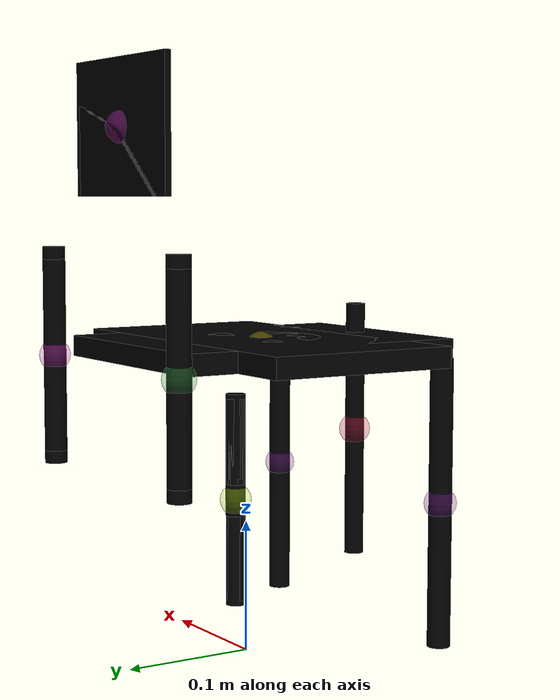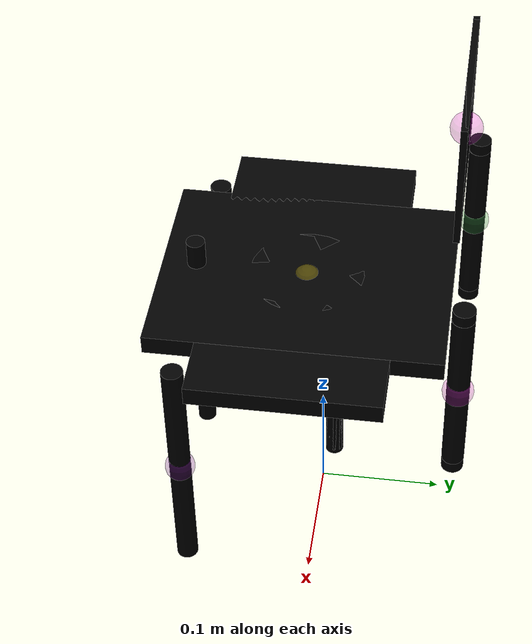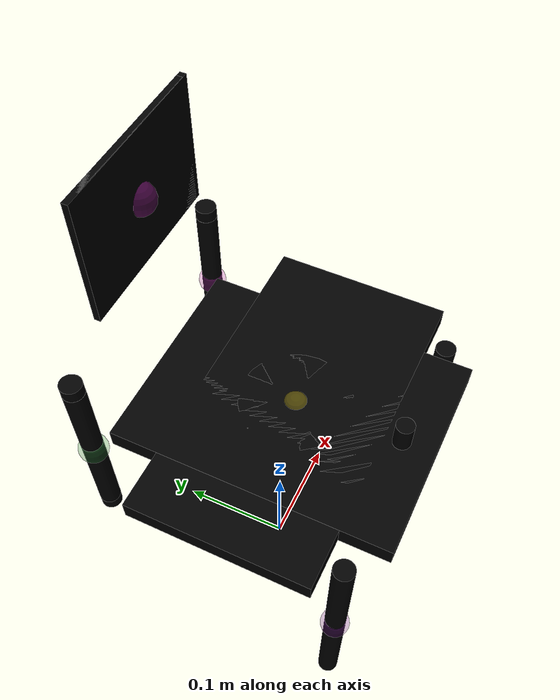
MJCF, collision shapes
<mujoco model="chair_balser_0115">
  <custom>
    <numeric data="-0.275772 0.129422 0.007124 1.0 0.0 0.0 0.0" name="0_part0_initpos" />
    <numeric data="0.376149 0.027328 0.00842 0.70441 -0.704527 0.061253 -0.060795" name="7_part7_initpos" />
    <numeric data="0.036779 -0.031849 0.007996 1.0 0.000356 0.000462 7.2e-05" name="6_part6_initpos" />
    <numeric data="-0.28514 0.250594 0.008346 0.707055 -0.008498 -0.707056 -0.008499" name="5_part5_initpos" />
    <numeric data="-0.282712 0.034813 0.008573 0.703702 -0.069309 -0.703702 0.069309" name="4_part4_initpos" />
    <numeric data="0.25925 0.024199 0.00842 0.011869 -0.011435 -0.707092 0.706929" name="3_part3_initpos" />
    <numeric data="0.046371 0.200692 0.005433 0.706734 -0.707072 0.00701 0.022966" name="2_part2_initpos" />
    <numeric data="-0.297152 -0.182409 0.007363 0.707019 0.000232 0.00023 0.707195" name="1_part1_initpos" />
  </custom>
  <asset>
    <mesh file="chair_balser_0115/0.stl" name="part0" scale="0.0006 0.0006 0.0006" />
    <mesh file="chair_balser_0115/7.stl" name="part7" scale="0.0006 0.0006 0.0006" />
    <mesh file="chair_balser_0115/6.stl" name="part6" scale="0.0006 0.0006 0.0006" />
    <mesh file="chair_balser_0115/5.stl" name="part5" scale="0.0006 0.0006 0.0006" />
    <mesh file="chair_balser_0115/4.stl" name="part4" scale="0.0006 0.0006 0.0006" />
    <mesh file="chair_balser_0115/3.stl" name="part3" scale="0.0006 0.0006 0.0006" />
    <mesh file="chair_balser_0115/2.stl" name="part2" scale="0.0006 0.0006 0.0006" />
    <mesh file="chair_balser_0115/1.stl" name="part1" scale="0.0006 0.0006 0.0006" />
  </asset>
  <worldbody>
  <inertial mass="5.0" diaginertia="0.05 0.05 0.05" pos="0 0 0" />
  <body name="combined_body" pos="0 -0.1 0.16336000366210936" quat="1 0 0 0"><geom conaffinity="0" contype="0" density="0" mesh="part0" name="0_part0_mesh" pos="0.0 0.0 0.0" rgba="0.82 0.71 0.55 1" type="mesh" quat="1 0 0 0" />
      <geom density="50" name="noviz_collision_0_part0_0" pos="0.0 0.0 0.0" quat="1 0 0 0" rgba="0 0 0 0" size="0.00735 0.0987" solref="0.001 3" type="cylinder" />
    <site name="0_part0_horizontal_radius_site" pos="0.0 0.0 0.0" quat="1 0 0 0" rgba="0 0 0 0" size="0.012" />
      <site name="0_part0_top_site" pos="0.0 0.0 0.0" quat="1 0 0 0" rgba="0 0 0 0" size="0.012" />
      <site name="0_part0_bottom_site" pos="0.0 0.0 0.0" quat="1 0 0 0" rgba="0 0 0 0" size="0.012" />
      <site name="0_part0_corner_site8" pos="0.0 0.0 0.0" quat="1 0 0 0" rgba="0 0 0 0" size="0.012" />
      <site name="0_part0_corner_site7" pos="0.0 0.0 0.0" quat="1 0 0 0" rgba="0 0 0 0" size="0.012" />
      <site name="0_part0_corner_site6" pos="0.0 0.0 0.0" quat="1 0 0 0" rgba="0 0 0 0" size="0.012" />
      <site name="0_part0_corner_site5" pos="0.0 0.0 0.0" quat="1 0 0 0" rgba="0 0 0 0" size="0.012" />
      <site name="0_part0_corner_site4" pos="0.0 0.0 0.0" quat="1 0 0 0" rgba="0 0 0 0" size="0.012" />
      <site name="0_part0_corner_site3" pos="0.0 0.0 0.0" quat="1 0 0 0" rgba="0 0 0 0" size="0.012" />
      <site name="0_part0_corner_site2" pos="0.0 0.0 0.0" quat="1 0 0 0" rgba="0 0 0 0" size="0.012" />
      <site name="0_part0_corner_site1" pos="0.0 0.0 0.0" quat="1 0 0 0" rgba="0 0 0 0" size="0.012" />
      <site name="frontsupp-frontlegs,conn_site2" pos="0.0 0.0 0.0" quat="1 0 0 0" rgba="0.9019 0.0980 0.2941 0.3" size="0.012" />
      <site name="frontsupp-frontlegs,conn_site1" pos="0.0 0.0 0.0" quat="1 0 0 0" rgba="0.9019 0.0980 0.2941 0.3" size="0.012" />
      <geom conaffinity="0" contype="0" density="0" mesh="part7" name="7_part7_mesh" pos="-0.09673416617999998 0.21222663083999996 0.06095999999999999" rgba="0.82 0.71 0.55 1" type="mesh" quat="1 0 0 0" />
      <geom density="50" name="noviz_collision_7_part7_1" pos="-0.09673416617999998 0.21222663083999996 0.06095999999999999" quat="1 0 0 0" rgba="0 0 0 0" size="0.008475 0.06" solref="0.001 3" type="cylinder" />
      <geom density="50" name="noviz_collision_7_part7_2" pos="-0.09673416617999998 0.21222663083999996 0.06095999999999999" quat="1 0 0 0" rgba="0 0 0 0" size="0.008475 0.0828" solref="0.001 3" type="cylinder" />
      <geom density="50" name="noviz_collision_7_part7_3" pos="-0.09673416617999998 0.21222663083999996 0.06095999999999999" quat="1 0 0 0" rgba="0 0 0 0" size="0.008549999999999999 0.07319999999999999" solref="0.001 3" type="cylinder" />
    <site name="7_part7_horizontal_radius_site" pos="-0.09673416617999998 0.21222663083999996 0.06095999999999999" quat="1 0 0 0" rgba="0 0 0 0" size="0.012" />
      <site name="7_part7_top_site" pos="-0.09673416617999998 0.21222663083999996 0.06095999999999999" quat="1 0 0 0" rgba="0 0 0 0" size="0.012" />
      <site name="7_part7_bottom_site" pos="-0.09673416617999998 0.21222663083999996 0.06095999999999999" quat="1 0 0 0" rgba="0 0 0 0" size="0.012" />
      <site name="7_part7_corner_site8" pos="-0.09673416617999998 0.21222663083999996 0.06095999999999999" quat="1 0 0 0" rgba="0 0 0 0" size="0.012" />
      <site name="7_part7_corner_site7" pos="-0.09673416617999998 0.21222663083999996 0.06095999999999999" quat="1 0 0 0" rgba="0 0 0 0" size="0.012" />
      <site name="7_part7_corner_site6" pos="-0.09673416617999998 0.21222663083999996 0.06095999999999999" quat="1 0 0 0" rgba="0 0 0 0" size="0.012" />
      <site name="7_part7_corner_site5" pos="-0.09673416617999998 0.21222663083999996 0.06095999999999999" quat="1 0 0 0" rgba="0 0 0 0" size="0.012" />
      <site name="7_part7_corner_site4" pos="-0.09673416617999998 0.21222663083999996 0.06095999999999999" quat="1 0 0 0" rgba="0 0 0 0" size="0.012" />
      <site name="7_part7_corner_site3" pos="-0.09673416617999998 0.21222663083999996 0.06095999999999999" quat="1 0 0 0" rgba="0 0 0 0" size="0.012" />
      <site name="7_part7_corner_site2" pos="-0.09673416617999998 0.21222663083999996 0.06095999999999999" quat="1 0 0 0" rgba="0 0 0 0" size="0.012" />
      <site name="7_part7_corner_site1" pos="-0.09673416617999998 0.21222663083999996 0.06095999999999999" quat="1 0 0 0" rgba="0 0 0 0" size="0.012" />
      <site name="rightleg-backpanel,0,conn_site2" pos="-0.09673416617999998 0.21222663083999996 0.06095999999999999" quat="1 0 0 0" rgba="0.2352 0.7058 0.2941 0.3" size="0.012" />
      <site name="rightleg-seat,0,conn_site1" pos="-0.09673416617999998 0.21222663083999996 0.06095999999999999" quat="1 0 0 0" rgba="1.0 0.8823 0.0980 0.3" size="0.012" />
      <site name="rightleg-botsupp,0,180,conn_site1" pos="-0.09673416617999998 0.21222663083999996 0.06095999999999999" quat="1 0 0 0" rgba="0.2627 0.3882 0.8470 0.3" size="0.012" />
      <geom conaffinity="0" contype="0" density="0" mesh="part6" name="6_part6_mesh" pos="0.0 0.08705057249999998 0.06857999999999999" rgba="0.82 0.71 0.55 1" type="mesh" quat="1 0 0 0" />
      <geom density="50" name="noviz_collision_6_part6_0" pos="0.0 0.08705057249999998 0.06857999999999999" quat="1 0 0 0" rgba="0 0 0 0" size="0.13499999999999998 0.0735 0.0078" solref="0.001 3" type="box" />
      <geom density="50" name="noviz_collision_6_part6_1" pos="0.0 0.08705057249999998 0.06857999999999999" quat="1 0 0 0" rgba="0 0 0 0" size="0.087 0.11399999999999999 0.0078" solref="0.001 3" type="box" />
      <geom density="50" name="noviz_collision_6_part6_2" pos="0.0 0.08705057249999998 0.06857999999999999" quat="1 0 0 0" rgba="0 0 0 0" size="0.045 0.0078" solref="0.001 3" type="cylinder" />
      <geom density="50" name="noviz_collision_6_part6_3" pos="0.0 0.08705057249999998 0.06857999999999999" quat="1 0 0 0" rgba="0 0 0 0" size="0.045 0.0078" solref="0.001 3" type="cylinder" />
      <geom density="50" name="noviz_collision_6_part6_4" pos="0.0 0.08705057249999998 0.06857999999999999" quat="1 0 0 0" rgba="0 0 0 0" size="0.045 0.0078" solref="0.001 3" type="cylinder" />
      <geom density="50" name="noviz_collision_6_part6_5" pos="0.0 0.08705057249999998 0.06857999999999999" quat="1 0 0 0" rgba="0 0 0 0" size="0.045 0.0078" solref="0.001 3" type="cylinder" />
    <site name="6_part6_horizontal_radius_site" pos="0.0 0.08705057249999998 0.06857999999999999" quat="1 0 0 0" rgba="0 0 0 0" size="0.012" />
      <site name="6_part6_top_site" pos="0.0 0.08705057249999998 0.06857999999999999" quat="1 0 0 0" rgba="0 0 0 0" size="0.012" />
      <site name="6_part6_bottom_site" pos="0.0 0.08705057249999998 0.06857999999999999" quat="1 0 0 0" rgba="0 0 0 0" size="0.012" />
      <site name="6_part6_corner_site8" pos="0.0 0.08705057249999998 0.06857999999999999" quat="1 0 0 0" rgba="0 0 0 0" size="0.012" />
      <site name="6_part6_corner_site7" pos="0.0 0.08705057249999998 0.06857999999999999" quat="1 0 0 0" rgba="0 0 0 0" size="0.012" />
      <site name="6_part6_corner_site6" pos="0.0 0.08705057249999998 0.06857999999999999" quat="1 0 0 0" rgba="0 0 0 0" size="0.012" />
      <site name="6_part6_corner_site5" pos="0.0 0.08705057249999998 0.06857999999999999" quat="1 0 0 0" rgba="0 0 0 0" size="0.012" />
      <site name="6_part6_corner_site4" pos="0.0 0.08705057249999998 0.06857999999999999" quat="1 0 0 0" rgba="0 0 0 0" size="0.012" />
      <site name="6_part6_corner_site3" pos="0.0 0.08705057249999998 0.06857999999999999" quat="1 0 0 0" rgba="0 0 0 0" size="0.012" />
      <site name="6_part6_corner_site2" pos="0.0 0.08705057249999998 0.06857999999999999" quat="1 0 0 0" rgba="0 0 0 0" size="0.012" />
      <site name="6_part6_corner_site1" pos="0.0 0.08705057249999998 0.06857999999999999" quat="1 0 0 0" rgba="0 0 0 0" size="0.012" />
      <site name="seat-rightleg,0,conn_site1" pos="0.0 0.08705057249999998 0.06857999999999999" quat="1 0 0 0" rgba="1.0 0.8823 0.0980 0.3" size="0.012" />
      <site name="seat-leftleg,0,conn_site1" pos="0.0 0.08705057249999998 0.06857999999999999" quat="1 0 0 0" rgba="0.9607 0.5098 0.1921 0.3" size="0.012" />
      <site name="seatqw-frontlegs,conn_site2" pos="0.0 0.08705057249999998 0.06857999999999999" quat="1 0 0 0" rgba="0.5686 0.1176 0.7058 0.3" size="0.012" />
      <site name="seatqw-frontlegs,conn_site1" pos="0.0 0.08705057249999998 0.06857999999999999" quat="1 0 0 0" rgba="0.5686 0.1176 0.7058 0.3" size="0.012" />
      <geom conaffinity="0" contype="0" density="0" mesh="part5" name="5_part5_mesh" pos="-0.10791100206 4.118394e-05 -0.041909999999999996" rgba="0.82 0.71 0.55 1" type="mesh" quat="1 0 0 0" />
      <geom density="50" name="noviz_collision_5_part5_0" pos="-0.10791100206 4.118394e-05 -0.041909999999999996" quat="1 0 0 0" rgba="0 0 0 0" size="0.008572253999999998 0.10679999999999999" solref="0.001 3" type="cylinder" />
    <site name="5_part5_horizontal_radius_site" pos="-0.10791100206 4.118394e-05 -0.041909999999999996" quat="1 0 0 0" rgba="0 0 0 0" size="0.012" />
      <site name="5_part5_top_site" pos="-0.10791100206 4.118394e-05 -0.041909999999999996" quat="1 0 0 0" rgba="0 0 0 0" size="0.012" />
      <site name="5_part5_bottom_site" pos="-0.10791100206 4.118394e-05 -0.041909999999999996" quat="1 0 0 0" rgba="0 0 0 0" size="0.012" />
      <site name="5_part5_corner_site8" pos="-0.10791100206 4.118394e-05 -0.041909999999999996" quat="1 0 0 0" rgba="0 0 0 0" size="0.012" />
      <site name="5_part5_corner_site7" pos="-0.10791100206 4.118394e-05 -0.041909999999999996" quat="1 0 0 0" rgba="0 0 0 0" size="0.012" />
      <site name="5_part5_corner_site6" pos="-0.10791100206 4.118394e-05 -0.041909999999999996" quat="1 0 0 0" rgba="0 0 0 0" size="0.012" />
      <site name="5_part5_corner_site5" pos="-0.10791100206 4.118394e-05 -0.041909999999999996" quat="1 0 0 0" rgba="0 0 0 0" size="0.012" />
      <site name="5_part5_corner_site4" pos="-0.10791100206 4.118394e-05 -0.041909999999999996" quat="1 0 0 0" rgba="0 0 0 0" size="0.012" />
      <site name="5_part5_corner_site3" pos="-0.10791100206 4.118394e-05 -0.041909999999999996" quat="1 0 0 0" rgba="0 0 0 0" size="0.012" />
      <site name="5_part5_corner_site2" pos="-0.10791100206 4.118394e-05 -0.041909999999999996" quat="1 0 0 0" rgba="0 0 0 0" size="0.012" />
      <site name="5_part5_corner_site1" pos="-0.10791100206 4.118394e-05 -0.041909999999999996" quat="1 0 0 0" rgba="0 0 0 0" size="0.012" />
      <site name="frontlegs-seatqw,conn_site1" pos="-0.10791100206 4.118394e-05 -0.041909999999999996" quat="1 0 0 0" rgba="0.5686 0.1176 0.7058 0.3" size="0.012" />
      <site name="frontlegs-botsuppw,0,180,conn_site1" pos="-0.10791100206 4.118394e-05 -0.041909999999999996" quat="1 0 0 0" rgba="0.2745 0.9411 0.9411 0.3" size="0.012" />
      <site name="frontlegs-frontsupp,conn_site2" pos="-0.10791100206 4.118394e-05 -0.041909999999999996" quat="1 0 0 0" rgba="0.9019 0.0980 0.2941 0.3" size="0.012" />
      <geom conaffinity="0" contype="0" density="0" mesh="part4" name="4_part4_mesh" pos="0.10791100206 4.118394e-05 -0.041909999999999996" rgba="0.82 0.71 0.55 1" type="mesh" quat="1 0 0 0" />
      <geom density="50" name="noviz_collision_4_part4_0" pos="0.10791100206 4.118394e-05 -0.041909999999999996" quat="1 0 0 0" rgba="0 0 0 0" size="0.008572769999999999 0.10679999999999999" solref="0.001 3" type="cylinder" />
    <site name="4_part4_horizontal_radius_site" pos="0.10791100206 4.118394e-05 -0.041909999999999996" quat="1 0 0 0" rgba="0 0 0 0" size="0.012" />
      <site name="4_part4_top_site" pos="0.10791100206 4.118394e-05 -0.041909999999999996" quat="1 0 0 0" rgba="0 0 0 0" size="0.012" />
      <site name="4_part4_bottom_site" pos="0.10791100206 4.118394e-05 -0.041909999999999996" quat="1 0 0 0" rgba="0 0 0 0" size="0.012" />
      <site name="4_part4_corner_site8" pos="0.10791100206 4.118394e-05 -0.041909999999999996" quat="1 0 0 0" rgba="0 0 0 0" size="0.012" />
      <site name="4_part4_corner_site7" pos="0.10791100206 4.118394e-05 -0.041909999999999996" quat="1 0 0 0" rgba="0 0 0 0" size="0.012" />
      <site name="4_part4_corner_site6" pos="0.10791100206 4.118394e-05 -0.041909999999999996" quat="1 0 0 0" rgba="0 0 0 0" size="0.012" />
      <site name="4_part4_corner_site5" pos="0.10791100206 4.118394e-05 -0.041909999999999996" quat="1 0 0 0" rgba="0 0 0 0" size="0.012" />
      <site name="4_part4_corner_site4" pos="0.10791100206 4.118394e-05 -0.041909999999999996" quat="1 0 0 0" rgba="0 0 0 0" size="0.012" />
      <site name="4_part4_corner_site3" pos="0.10791100206 4.118394e-05 -0.041909999999999996" quat="1 0 0 0" rgba="0 0 0 0" size="0.012" />
      <site name="4_part4_corner_site2" pos="0.10791100206 4.118394e-05 -0.041909999999999996" quat="1 0 0 0" rgba="0 0 0 0" size="0.012" />
      <site name="4_part4_corner_site1" pos="0.10791100206 4.118394e-05 -0.041909999999999996" quat="1 0 0 0" rgba="0 0 0 0" size="0.012" />
      <site name="frontlegs-seatqw,conn_site2" pos="0.10791100206 4.118394e-05 -0.041909999999999996" quat="1 0 0 0" rgba="0.5686 0.1176 0.7058 0.3" size="0.012" />
      <site name="frontlegs-botsuppw,0,180,conn_site2" pos="0.10791100206 4.118394e-05 -0.041909999999999996" quat="1 0 0 0" rgba="0.2745 0.9411 0.9411 0.3" size="0.012" />
      <site name="frontlegs-frontsupp,conn_site1" pos="0.10791100206 4.118394e-05 -0.041909999999999996" quat="1 0 0 0" rgba="0.9019 0.0980 0.2941 0.3" size="0.012" />
      <geom conaffinity="0" contype="0" density="0" mesh="part3" name="3_part3_mesh" pos="0.09673416617999998 0.21222663083999996 0.06095999999999999" rgba="0.82 0.71 0.55 1" type="mesh" quat="1 0 0 0" />
      <geom density="50" name="noviz_collision_3_part3_0" pos="0.09673416617999998 0.21222663083999996 0.06095999999999999" quat="1 0 0 0" rgba="0 0 0 0" size="0.008475 0.06" solref="0.001 3" type="cylinder" />
      <geom density="50" name="noviz_collision_3_part3_1" pos="0.09673416617999998 0.21222663083999996 0.06095999999999999" quat="1 0 0 0" rgba="0 0 0 0" size="0.008475 0.0828" solref="0.001 3" type="cylinder" />
      <geom density="50" name="noviz_collision_3_part3_2" pos="0.09673416617999998 0.21222663083999996 0.06095999999999999" quat="1 0 0 0" rgba="0 0 0 0" size="0.008549999999999999 0.07319999999999999" solref="0.001 3" type="cylinder" />
    <site name="3_part3_horizontal_radius_site" pos="0.09673416617999998 0.21222663083999996 0.06095999999999999" quat="1 0 0 0" rgba="0 0 0 0" size="0.012" />
      <site name="3_part3_top_site" pos="0.09673416617999998 0.21222663083999996 0.06095999999999999" quat="1 0 0 0" rgba="0 0 0 0" size="0.012" />
      <site name="3_part3_bottom_site" pos="0.09673416617999998 0.21222663083999996 0.06095999999999999" quat="1 0 0 0" rgba="0 0 0 0" size="0.012" />
      <site name="3_part3_corner_site8" pos="0.09673416617999998 0.21222663083999996 0.06095999999999999" quat="1 0 0 0" rgba="0 0 0 0" size="0.012" />
      <site name="3_part3_corner_site7" pos="0.09673416617999998 0.21222663083999996 0.06095999999999999" quat="1 0 0 0" rgba="0 0 0 0" size="0.012" />
      <site name="3_part3_corner_site6" pos="0.09673416617999998 0.21222663083999996 0.06095999999999999" quat="1 0 0 0" rgba="0 0 0 0" size="0.012" />
      <site name="3_part3_corner_site5" pos="0.09673416617999998 0.21222663083999996 0.06095999999999999" quat="1 0 0 0" rgba="0 0 0 0" size="0.012" />
      <site name="3_part3_corner_site4" pos="0.09673416617999998 0.21222663083999996 0.06095999999999999" quat="1 0 0 0" rgba="0 0 0 0" size="0.012" />
      <site name="3_part3_corner_site3" pos="0.09673416617999998 0.21222663083999996 0.06095999999999999" quat="1 0 0 0" rgba="0 0 0 0" size="0.012" />
      <site name="3_part3_corner_site2" pos="0.09673416617999998 0.21222663083999996 0.06095999999999999" quat="1 0 0 0" rgba="0 0 0 0" size="0.012" />
      <site name="3_part3_corner_site1" pos="0.09673416617999998 0.21222663083999996 0.06095999999999999" quat="1 0 0 0" rgba="0 0 0 0" size="0.012" />
      <site name="leftleg-backpanel,0,conn_site1" pos="0.09673416617999998 0.21222663083999996 0.06095999999999999" quat="1 0 0 0" rgba="0.9411 0.1960 0.9019 0.3" size="0.012" />
      <site name="leftleg-seat,0,conn_site1" pos="0.09673416617999998 0.21222663083999996 0.06095999999999999" quat="1 0 0 0" rgba="0.9607 0.5098 0.1921 0.3" size="0.012" />
      <site name="leftleg-botsupp,0,180,conn_site1" pos="0.09673416617999998 0.21222663083999996 0.06095999999999999" quat="1 0 0 0" rgba="0.7372 0.9647 0.0470 0.3" size="0.012" />
      <geom conaffinity="0" contype="0" density="0" mesh="part2" name="2_part2_mesh" pos="0.0020415865799999996 0.20224755426 0.23028849858" rgba="0.82 0.71 0.55 1" type="mesh" quat="1 0 0 0" />
      <geom density="50" name="noviz_collision_2_part2_0" pos="0.0020415865799999996 0.20224755426 0.23028849858" quat="1 0 0 0" rgba="0 0 0 0" size="0.0672 0.0024 0.0489" solref="0.001 3" type="box" />
      <geom density="50" name="noviz_collision_2_part2_1" pos="0.0020415865799999996 0.20224755426 0.23028849858" quat="1 0 0 0" rgba="0 0 0 0" size="0.063 0.0024 0.0489" solref="0.001 3" type="box" />
    <site name="2_part2_horizontal_radius_site" pos="0.0020415865799999996 0.20224755426 0.23028849858" quat="1 0 0 0" rgba="0 0 0 0" size="0.012" />
      <site name="2_part2_top_site" pos="0.0020415865799999996 0.20224755426 0.23028849858" quat="1 0 0 0" rgba="0 0 0 0" size="0.012" />
      <site name="2_part2_bottom_site" pos="0.0020415865799999996 0.20224755426 0.23028849858" quat="1 0 0 0" rgba="0 0 0 0" size="0.012" />
      <site name="2_part2_corner_site8" pos="0.0020415865799999996 0.20224755426 0.23028849858" quat="1 0 0 0" rgba="0 0 0 0" size="0.012" />
      <site name="2_part2_corner_site7" pos="0.0020415865799999996 0.20224755426 0.23028849858" quat="1 0 0 0" rgba="0 0 0 0" size="0.012" />
      <site name="2_part2_corner_site6" pos="0.0020415865799999996 0.20224755426 0.23028849858" quat="1 0 0 0" rgba="0 0 0 0" size="0.012" />
      <site name="2_part2_corner_site5" pos="0.0020415865799999996 0.20224755426 0.23028849858" quat="1 0 0 0" rgba="0 0 0 0" size="0.012" />
      <site name="2_part2_corner_site4" pos="0.0020415865799999996 0.20224755426 0.23028849858" quat="1 0 0 0" rgba="0 0 0 0" size="0.012" />
      <site name="2_part2_corner_site3" pos="0.0020415865799999996 0.20224755426 0.23028849858" quat="1 0 0 0" rgba="0 0 0 0" size="0.012" />
      <site name="2_part2_corner_site2" pos="0.0020415865799999996 0.20224755426 0.23028849858" quat="1 0 0 0" rgba="0 0 0 0" size="0.012" />
      <site name="2_part2_corner_site1" pos="0.0020415865799999996 0.20224755426 0.23028849858" quat="1 0 0 0" rgba="0 0 0 0" size="0.012" />
      <site name="backpanel-leftleg,0,conn_site1" pos="0.0020415865799999996 0.20224755426 0.23028849858" quat="1 0 0 0" rgba="0.9411 0.1960 0.9019 0.3" size="0.012" />
      <site name="backpanel-rightleg,0,conn_site2" pos="0.0020415865799999996 0.20224755426 0.23028849858" quat="1 0 0 0" rgba="0.2352 0.7058 0.2941 0.3" size="0.012" />
      <geom conaffinity="0" contype="0" density="0" mesh="part1" name="1_part1_mesh" pos="-1.8599999999999998e-09 0.1095593409 -0.04572" rgba="0.82 0.71 0.55 1" type="mesh" quat="1 0 0 0" />
      <geom density="50" name="noviz_collision_1_part1_0" pos="-1.8599999999999998e-09 0.1095593409 -0.04572" quat="1 0 0 0" rgba="0 0 0 0" size="0.00735 0.0804" solref="0.001 3" type="cylinder" />
      <geom density="50" name="noviz_collision_1_part1_1" pos="-1.8599999999999998e-09 0.1095593409 -0.04572" quat="1 0 0 0" rgba="0 0 0 0" size="0.00735 0.0168" solref="0.001 3" type="cylinder" />
      <geom density="50" name="noviz_collision_1_part1_2" pos="-1.8599999999999998e-09 0.1095593409 -0.04572" quat="1 0 0 0" rgba="0 0 0 0" size="0.00735 0.0168" solref="0.001 3" type="cylinder" />
      <geom density="50" name="noviz_collision_1_part1_3" pos="-1.8599999999999998e-09 0.1095593409 -0.04572" quat="1 0 0 0" rgba="0 0 0 0" size="0.00735 0.0804" solref="0.001 3" type="cylinder" />
      <geom density="50" name="noviz_collision_1_part1_4" pos="-1.8599999999999998e-09 0.1095593409 -0.04572" quat="1 0 0 0" rgba="0 0 0 0" size="0.0075 0.012" solref="0.001 3" type="cylinder" />
      <geom density="50" name="noviz_collision_1_part15" pos="-1.8599999999999998e-09 0.1095593409 -0.04572" quat="1 0 0 0" rgba="0 0 0 0" size="0.0075 0.012" solref="0.001 3" type="cylinder" />
      <geom density="50" name="noviz_collision_1_part1_6" pos="-1.8599999999999998e-09 0.1095593409 -0.04572" quat="1 0 0 0" rgba="0 0 0 0" size="0.00735 0.0768" solref="0.001 3" type="cylinder" />
    <site name="1_part1_horizontal_radius_site" pos="-1.8599999999999998e-09 0.1095593409 -0.04572" quat="1 0 0 0" rgba="0 0 0 0" size="0.012" />
      <site name="1_part1_top_site" pos="-1.8599999999999998e-09 0.1095593409 -0.04572" quat="1 0 0 0" rgba="0 0 0 0" size="0.012" />
      <site name="1_part1_bottom_site" pos="-1.8599999999999998e-09 0.1095593409 -0.04572" quat="1 0 0 0" rgba="0 0 0 0" size="0.012" />
      <site name="1_part1_corner_site8" pos="-1.8599999999999998e-09 0.1095593409 -0.04572" quat="1 0 0 0" rgba="0 0 0 0" size="0.012" />
      <site name="1_part1_corner_site7" pos="-1.8599999999999998e-09 0.1095593409 -0.04572" quat="1 0 0 0" rgba="0 0 0 0" size="0.012" />
      <site name="1_part1_corner_site6" pos="-1.8599999999999998e-09 0.1095593409 -0.04572" quat="1 0 0 0" rgba="0 0 0 0" size="0.012" />
      <site name="1_part1_corner_site5" pos="-1.8599999999999998e-09 0.1095593409 -0.04572" quat="1 0 0 0" rgba="0 0 0 0" size="0.012" />
      <site name="1_part1_corner_site4" pos="-1.8599999999999998e-09 0.1095593409 -0.04572" quat="1 0 0 0" rgba="0 0 0 0" size="0.012" />
      <site name="1_part1_corner_site3" pos="-1.8599999999999998e-09 0.1095593409 -0.04572" quat="1 0 0 0" rgba="0 0 0 0" size="0.012" />
      <site name="1_part1_corner_site2" pos="-1.8599999999999998e-09 0.1095593409 -0.04572" quat="1 0 0 0" rgba="0 0 0 0" size="0.012" />
      <site name="1_part1_corner_site1" pos="-1.8599999999999998e-09 0.1095593409 -0.04572" quat="1 0 0 0" rgba="0 0 0 0" size="0.012" />
      <site name="botsupp-leftleg,0,180,conn_site1" pos="-1.8599999999999998e-09 0.1095593409 -0.04572" quat="1 0 0 0" rgba="0.7372 0.9647 0.0470 0.3" size="0.012" />
      <site name="botsupp-rightleg,0,180,conn_site1" pos="-1.8599999999999998e-09 0.1095593409 -0.04572" quat="1 0 0 0" rgba="0.2627 0.3882 0.8470 0.3" size="0.012" />
      <site name="botsuppw-frontlegs,0,180,conn_site2" pos="-1.8599999999999998e-09 0.1095593409 -0.04572" quat="1 0 0 0" rgba="0.2745 0.9411 0.9411 0.3" size="0.012" />
      <site name="botsuppw-frontlegs,0,180,conn_site1" pos="-1.8599999999999998e-09 0.1095593409 -0.04572" quat="1 0 0 0" rgba="0.2745 0.9411 0.9411 0.3" size="0.012" />
      </body></worldbody><actuator />
  <sensor />
  <contact />
  <default />
</mujoco>
